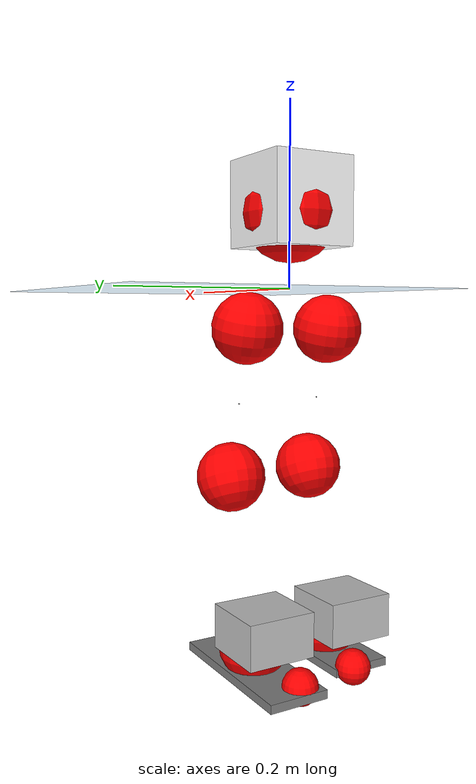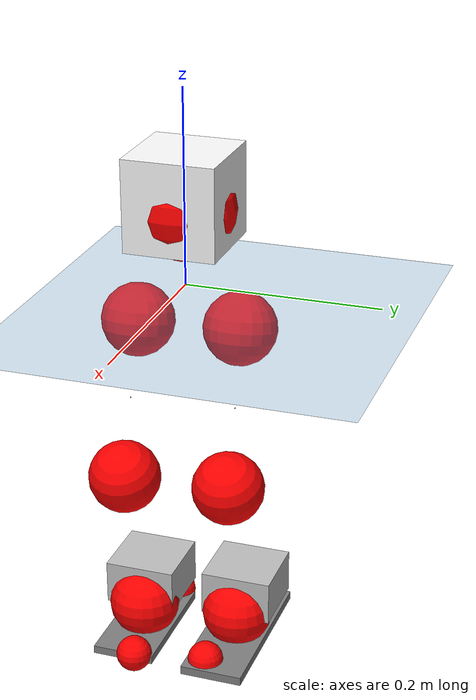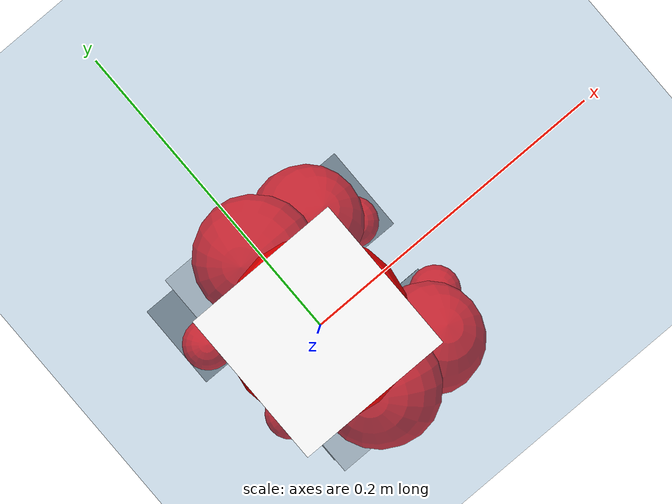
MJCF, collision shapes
<mujoco model="pi_12dof_release_v1">
  <compiler angle="radian" assetdir="assets" balanceinertia="true" inertiafromgeom="false"/>

  <option timestep="0.005" density="1.2" viscosity="2e-05"/>

  <size nkey="1"/>

  <visual>
    <quality shadowsize="8192"/>
    <map shadowclip="0.5"/>
  </visual>

  <default>
    <default class="/">
      <joint armature="0.01" damping="0.01" frictionloss="0.01"/>
      <geom contype="0" conaffinity="0" group="1" solref="-1000 -80"/>
      <site size="0.01 0.005 0.005" group="5"/>
      <general forcelimited="true" biastype="affine" gainprm="20" biasprm="0 -20 -0.5"/>
      <default class="foot">
        <geom size="0.0845 0.036 0.005" type="box" condim="6" group="4" priority="1" friction="0.9 0.2 0.2" solimp="0.015 1 0.005"/>
      </default>
      <default class="reward_collision_sphere">
        <geom group="5" rgba="1 0 0 1"/>
      </default>
    </default>
  </default>

  <asset>
    <texture type="skybox" colorspace="auto" name="//unnamed_texture_0" builtin="gradient" rgb1="0.95 0.95 0.95" rgb2="0.95 0.95 0.95" width="100" height="600"/>
    <texture type="2d" colorspace="auto" name="texplane" builtin="checker" rgb1="0.345 0.575 0.748" rgb2="0.345 0.575 0.748" markrgb="1 1 1" width="512" height="512"/>
    <material name="MatPlane" class="/" texture="texplane" texuniform="true" texrepeat="2 2" specular="0.9"/>
    <mesh name="baselink_1" class="/" file="baselink_1.STL"/>
    <mesh name="r_hip_pitch_link" class="/" file="r_hip_pitch_link.STL"/>
    <mesh name="r_hip_roll_link" class="/" file="r_hip_roll_link.STL"/>
    <mesh name="r_thigh_link" class="/" file="r_thigh_link.STL"/>
    <mesh name="r_calf_link" class="/" file="r_calf_link.STL"/>
    <mesh name="r_ankle_pitch_link" class="/" file="r_ankle_pitch_link.STL"/>
    <mesh name="r_ankle_roll_link" class="/" file="r_ankle_roll_link.STL"/>
    <mesh name="l_hip_pitch_link" class="/" file="l_hip_pitch_link.STL"/>
    <mesh name="l_hip_roll_link" class="/" file="l_hip_roll_link.STL"/>
    <mesh name="l_thigh_link" class="/" file="l_thigh_link.STL"/>
    <mesh name="l_calf_link" class="/" file="l_calf_link.STL"/>
    <mesh name="l_ankle_pitch_link" class="/" file="l_ankle_pitch_link.STL"/>
    <mesh name="l_ankle_roll_link" class="/" file="l_ankle_roll_link.STL"/>
  </asset>

  <worldbody>
    <geom name="floor" class="/" size="100 100 0.125" type="plane" group="0" material="MatPlane"/>
    <light name="toplight_shadow" class="/" pos="0 0 5" dir="0.0990148 0.0990148 -0.990148" type="directional" ambient="0.04 0.04 0.04" diffuse="0.55 0.55 0.55" specular="0.12 0.12 0.12"/>
    <light name="toplight_fill" class="/" pos="0 0 5" dir="0.0990148 0.0990148 -0.990148" type="directional" castshadow="false" ambient="0.04 0.04 0.04" diffuse="0.3 0.3 0.3" specular="0.08 0.08 0.08"/>
    <body name="trunk" pos="-0.000695528 -0.000434747 -0.00246914" quat="1 -1.07795e-05 0.000136698 -0.000145989">
      <inertial pos="0.000390864 -0.00152277 0.0500013" quat="0.696943 0.00297777 0.0185487 0.71688" mass="1.83681" diaginertia="0.0105059 0.00108256 0.00929524"/>
      <joint name="//unnamed_joint_0" type="free"/>
      <geom name="//unnamed_geom_1" class="/" type="mesh" density="0" rgba="1 1 1 1" mesh="baselink_1"/>
      <geom name="//unnamed_geom_2" class="/" size="0.0471121 0.0471121 0.0471121" pos="0 0 0.0935439" type="box" rgba="1 1 1 1"/>
      <geom name="//unnamed_geom_3" class="reward_collision_sphere" size="0.0518233" pos="0 0 0.0818509"/>
      <site name="imu" class="/" pos="0.000755016 -4.28664e-05 0.00626564" size="0.00942242"/>
      <camera name="track" class="/" pos="0 -1.30563 0" quat="0.707107 0.707107 0 0" mode="trackcom"/>
      <camera name="ego_camera" class="/" pos="0.0753459 0 0.210474" quat="-0.5 -0.5 0.5 0.5"/>
      <body name="r_hip_pitch_link" pos="0.00197347 -0.0162442 -0.0386746" quat="0.992239 -0.000835659 -0.12434 0.00104436">
        <inertial pos="0.00207362 -0.0397731 0.000831563" quat="-0.0069523 0.702208 -0.0323391 0.711203" mass="0.30973" diaginertia="0.0001115 1.18189e-05 0.000188824"/>
        <joint name="r_hip_pitch_joint" class="/" pos="0 0 0" axis="-0.000682199 -0.999999 -0.00127696" range="-1.75397 1.23654" armature="0.00813452" damping="0.0107246" frictionloss="0.00833109"/>
        <geom name="//unnamed_geom_4" class="/" type="mesh" density="0" rgba="0.75294 0.75294 0.75294 1" mesh="r_hip_pitch_link"/>
        <geom name="//unnamed_geom_5" class="/" size="0.000471121 0.000471121 0.000471121" type="box" rgba="0.75294 0.75294 0.75294 1"/>
        <body name="r_hip_roll_link" pos="0.000634329 -0.0344203 -0.00203943" quat="1 -1.71759e-05 -3.91076e-05 3.42592e-05">
          <inertial pos="0.0016914 1.04253e-05 -0.0703423" quat="0.704386 -0.0822594 -0.0746452 0.701072" mass="0.332141" diaginertia="0.000334127 3.2529e-05 0.000275513"/>
          <joint name="r_hip_roll_joint" class="/" pos="0 0 0" axis="-0.999999 -0.000350427 0.00102357" range="-0.141979 0.542443" armature="0.00802334" damping="0.00668323" frictionloss="0.0104986"/>
          <geom name="//unnamed_geom_6" class="/" type="mesh" density="0" rgba="0.75294 0.75294 0.75294 1" mesh="r_hip_roll_link"/>
          <geom name="//unnamed_geom_7" class="/" size="0.000471121 0.000471121 0.000471121" type="box" rgba="0.75294 0.75294 0.75294 1"/>
          <geom name="//unnamed_geom_8" class="reward_collision_sphere" size="0.0376897"/>
          <body name="r_thigh_link" pos="0.00221554 -0.00172502 -0.0809939" quat="1 0.000545682 -0.000130981 -0.000563633">
            <inertial pos="-0.000441583 -0.000486635 -0.0571846" quat="0.735767 0.677192 -0.00418786 -0.00635791" mass="0.0921103" diaginertia="0.000123377 1.12061e-05 0.000120449"/>
            <joint name="r_thigh_joint" class="/" pos="0 0 0" axis="-0.000199882 -0.0152069 -0.999884" stiffness="0.00955367" range="-0.255208 0.632486" armature="0.00977949" damping="0.00753313" frictionloss="0.00959326"/>
            <geom name="//unnamed_geom_9" class="/" type="mesh" density="0" rgba="0.75294 0.75294 0.75294 1" mesh="r_thigh_link"/>
            <geom name="//unnamed_geom_10" class="/" size="0.000471121 0.000471121 0.000471121" type="box" rgba="0.75294 0.75294 0.75294 1"/>
            <body name="r_calf_link" pos="-0.00205114 -0.00149653 -0.0839529" quat="0.94762 -5.56648e-05 0.3194 -0.000758677">
              <inertial pos="0.00094118 -8.78968e-05 -0.082408" quat="0.999979 -0.00289119 -0.00191872 0.00547089" mass="0.690519" diaginertia="0.00359837 0.000443901 0.000394296"/>
              <joint name="r_calf_joint" class="/" pos="0 0 0" axis="0.00801898 -0.999955 -0.00516294" range="-1.63197 0.704155" armature="0.00819256" damping="0.0205853" frictionloss="0.00810333"/>
              <geom name="//unnamed_geom_11" class="/" type="mesh" density="0" rgba="0.75294 0.75294 0.75294 1" mesh="r_calf_link"/>
              <geom name="//unnamed_geom_12" class="/" size="0.000471121 0.000471121 0.000471121" type="box" rgba="0.75294 0.75294 0.75294 1"/>
              <geom name="//unnamed_geom_13" class="reward_collision_sphere" size="0.0376897"/>
              <body name="r_ankle_pitch_link" pos="-0.00141497 7.92253e-05 -0.166338" quat="0.980076 2.29846e-05 -0.198622 -1.28354e-05">
                <inertial pos="0.00500531 0.00266391 0.000503086" quat="0.00369813 0.703166 -0.00656818 0.710985" mass="0.142208" diaginertia="0.000303968 2.6452e-05 0.000263737"/>
                <joint name="r_ankle_pitch_joint" class="/" pos="0 0 0" axis="-0.00166237 -0.999965 -0.00823088" range="-1.32939 0.518448" armature="0.00900197" damping="0.00123108" frictionloss="0.00931727"/>
                <geom name="//unnamed_geom_14" class="/" type="mesh" density="0" rgba="0.75294 0.75294 0.75294 1" mesh="r_ankle_pitch_link"/>
                <geom name="//unnamed_geom_15" class="/" size="0.0367474 0.0376897 0.023556" type="box" rgba="0.75294 0.75294 0.75294 1"/>
                <body name="r_ankle_roll_link" pos="0.0778842 0.00224477 0.00199624" quat="1 -0.000155343 -0.000270463 -5.98304e-05">
                  <inertial pos="-0.0241834 0.000651367 -0.0161556" quat="0.554759 0.422305 0.442768 0.563789" mass="0.431757" diaginertia="0.00115456 0.000119097 0.000610122"/>
                  <joint name="r_ankle_roll_joint" class="/" pos="0 0 0" axis="-0.999987 -0.00108726 -0.00506603" range="-0.203804 0.205208" armature="0.0105793" damping="9.22234e-05" frictionloss="0.010111"/>
                  <geom name="//unnamed_geom_16" class="/" type="mesh" density="0" rgba="0.75294 0.75294 0.75294 1" mesh="r_ankle_roll_link"/>
                  <geom name="//unnamed_geom_17" class="/" type="mesh" rgba="0.75294 0.75294 0.75294 1" mesh="r_ankle_roll_link"/>
                  <geom name="right_foot" class="foot" size="0.0672383 0.0329838 0.00430236" pos="-0.0512352 0 -0.0514492"/>
                  <geom name="//unnamed_geom_19" class="reward_collision_sphere" size="0.0376897" pos="-0.0502306 0 -0.023386"/>
                  <geom name="//unnamed_geom_20" class="reward_collision_sphere" size="0.0188448" pos="0.0150692 0.0130563 -0.046772"/>
                  <geom name="//unnamed_geom_21" class="reward_collision_sphere" size="0.0188448" pos="-0.120553 0.0130563 -0.046772"/>
                  <site name="right_foot" class="foot" pos="-0.0512352 0 -0.0514492" size="0.00942242"/>
                </body>
              </body>
            </body>
          </body>
        </body>
      </body>
      <body name="l_hip_pitch_link" pos="-0.00058698 0.0180295 -0.0378001" quat="0.992167 -0.000125055 -0.124918 0.000689639">
        <inertial pos="0.00386999 0.0361446 -0.00104811" quat="-0.0463186 0.707668 0.0401934 0.703879" mass="0.328537" diaginertia="0.000125073 1.22491e-05 0.000212513"/>
        <joint name="l_hip_pitch_joint" class="/" pos="0 0 0" axis="-0.00268398 0.999945 0.0101381" range="-1.26963 1.77062" armature="0.00965138" damping="0.0125077" frictionloss="0.0091225"/>
        <geom name="//unnamed_geom_22" class="/" type="mesh" density="0" rgba="0.75294 0.75294 0.75294 1" mesh="l_hip_pitch_link"/>
        <geom name="//unnamed_geom_23" class="/" size="0.000471121 0.000471121 0.000471121" type="box" rgba="0.75294 0.75294 0.75294 1"/>
        <body name="l_hip_roll_link" pos="-0.00320845 0.0375991 -0.000224799" quat="1 7.3447e-05 -3.02481e-05 6.51337e-06">
          <inertial pos="-0.000927739 0.00188319 -0.0722228" quat="0.697479 -0.0772368 -0.0807889 0.707836" mass="0.32605" diaginertia="0.000342051 3.18194e-05 0.000288216"/>
          <joint name="l_hip_roll_joint" class="/" pos="0 0 0" axis="-1 0.000562397 -0.00075016" stiffness="0.000560467" range="-0.500912 0.16836" armature="0.0095318" damping="0" frictionloss="0.00883301"/>
          <geom name="//unnamed_geom_24" class="/" type="mesh" density="0" rgba="0.75294 0.75294 0.75294 1" mesh="l_hip_roll_link"/>
          <geom name="//unnamed_geom_25" class="/" size="0.000471121 0.000471121 0.000471121" type="box" rgba="0.75294 0.75294 0.75294 1"/>
          <geom name="//unnamed_geom_26" class="reward_collision_sphere" size="0.0376897"/>
          <body name="l_thigh_link" pos="-0.00322257 -4.55103e-05 -0.0822527" quat="0.999999 -8.91322e-06 -0.000857552 -0.000844113">
            <inertial pos="0.000488058 -0.00115559 -0.0542463" quat="0.674533 0.738235 0.00326635 -0.00174434" mass="0.0944004" diaginertia="0.000126707 1.12175e-05 0.000127267"/>
            <joint name="l_thigh_joint" class="/" pos="0 0 0" axis="-0.00579568 -0.0111747 -0.999921" range="-0.65766 0.350829" armature="0.0107147" damping="0" frictionloss="0.0106858"/>
            <geom name="//unnamed_geom_27" class="/" type="mesh" density="0" rgba="0.75294 0.75294 0.75294 1" mesh="l_thigh_link"/>
            <geom name="//unnamed_geom_28" class="/" size="0.000471121 0.000471121 0.000471121" type="box" rgba="0.75294 0.75294 0.75294 1"/>
            <body name="l_calf_link" pos="-0.00171771 -0.000882954 -0.0839421" quat="0.947441 -0.000743604 0.319931 3.14217e-05">
              <inertial pos="-0.000454996 0.00229506 -0.0802303" quat="0.999947 0.00746562 0.00688287 0.00188347" mass="0.655058" diaginertia="0.00348331 0.000401641 0.00036706"/>
              <joint name="l_calf_joint" class="/" pos="0 0 0" axis="-0.0063108 0.999946 0.00831194" range="-0.602221 1.66832" armature="0.0088556" damping="0.00596124" frictionloss="0.00886917"/>
              <geom name="//unnamed_geom_29" class="/" type="mesh" density="0" rgba="0.75294 0.75294 0.75294 1" mesh="l_calf_link"/>
              <geom name="//unnamed_geom_30" class="/" size="0.000471121 0.000471121 0.000471121" type="box" rgba="0.75294 0.75294 0.75294 1"/>
              <geom name="//unnamed_geom_31" class="reward_collision_sphere" size="0.0376897"/>
              <body name="l_ankle_pitch_link" pos="-0.00090857 -0.00248128 -0.163314" quat="0.980029 -0.000340622 -0.198856 -0.000377954">
                <inertial pos="0.0072943 -0.00226459 0.000248754" quat="-0.00283097 0.707393 0.00169993 0.706812" mass="0.147879" diaginertia="0.000310964 2.61585e-05 0.000267395"/>
                <joint name="l_ankle_pitch_joint" class="/" pos="0 0 0" axis="-0.00442808 0.999939 0.010089" stiffness="0.000777776" range="-0.490989 1.3154" armature="0.00959712" damping="0" frictionloss="0.00900297"/>
                <geom name="//unnamed_geom_32" class="/" type="mesh" density="0" rgba="0.75294 0.75294 0.75294 1" mesh="l_ankle_pitch_link"/>
                <geom name="//unnamed_geom_33" class="/" size="0.0367474 0.0376897 0.023556" type="box" rgba="0.75294 0.75294 0.75294 1"/>
                <body name="l_ankle_roll_link" pos="0.0741686 -0.00175743 0.0010206" quat="0.999999 -0.000726591 -1.83318e-05 -0.0011099">
                  <inertial pos="-0.0273377 -0.000663668 -0.0177597" quat="0.55821 0.424918 0.439157 0.561237" mass="0.427756" diaginertia="0.00110593 0.000123648 0.000605184"/>
                  <joint name="l_ankle_roll_joint" class="/" pos="0 0 0" axis="-0.999991 -0.00386514 -0.00156479" range="-0.161749 0.148894" armature="0.00843376" damping="0.00731334" frictionloss="0.00929202"/>
                  <geom name="//unnamed_geom_34" class="/" type="mesh" density="0" rgba="0.75294 0.75294 0.75294 1" mesh="l_ankle_roll_link"/>
                  <geom name="//unnamed_geom_35" class="/" type="mesh" rgba="0.75294 0.75294 0.75294 1" mesh="l_ankle_roll_link"/>
                  <geom name="left_foot" class="foot" size="0.0879902 0.033064 0.00456716" pos="-0.0512352 0 -0.0514492"/>
                  <geom name="//unnamed_geom_37" class="reward_collision_sphere" size="0.0376897" pos="-0.0502306 0 -0.023386"/>
                  <geom name="//unnamed_geom_38" class="reward_collision_sphere" size="0.0188448" pos="0.0150692 -0.0130563 -0.046772"/>
                  <geom name="//unnamed_geom_39" class="reward_collision_sphere" size="0.0188448" pos="-0.120553 -0.0130563 -0.046772"/>
                  <site name="left_foot" class="foot" pos="-0.0512352 0 -0.0514492" size="0.00942242"/>
                </body>
              </body>
            </body>
          </body>
        </body>
      </body>
    </body>
  </worldbody>

  <contact>
    <pair class="/" geom1="floor" geom2="right_foot" name="//unnamed_contact_1"/>
    <pair class="/" geom1="floor" geom2="left_foot" name="//unnamed_contact_0"/>
  </contact>

  <actuator>
    <general name="r_hip_pitch_joint" class="/" joint="r_hip_pitch_joint" forcerange="-21.6085 21.6085" gainprm="18.8637" biasprm="0 -18.8637 -0.485386"/>
    <general name="r_hip_roll_joint" class="/" joint="r_hip_roll_joint" forcerange="-18.5669 18.5669" gainprm="18.8637" biasprm="0 -18.8637 -0.485386"/>
    <general name="r_thigh_joint" class="/" joint="r_thigh_joint" forcerange="-21.4569 21.4569" gainprm="18.8637" biasprm="0 -18.8637 -0.485386"/>
    <general name="r_calf_joint" class="/" joint="r_calf_joint" forcerange="-20.3706 20.3706" gainprm="18.8637" biasprm="0 -18.8637 -0.485386"/>
    <general name="r_ankle_pitch_joint" class="/" joint="r_ankle_pitch_joint" forcerange="-18.4563 18.4563" gainprm="18.8637" biasprm="0 -18.8637 -0.485386"/>
    <general name="r_ankle_roll_joint" class="/" joint="r_ankle_roll_joint" forcerange="-19.5003 19.5003" gainprm="18.8637" biasprm="0 -18.8637 -0.485386"/>
    <general name="l_hip_pitch_joint" class="/" joint="l_hip_pitch_joint" forcerange="-19.6523 19.6523" gainprm="18.8637" biasprm="0 -18.8637 -0.485386"/>
    <general name="l_hip_roll_joint" class="/" joint="l_hip_roll_joint" forcerange="-17.7478 17.7478" gainprm="18.8637" biasprm="0 -18.8637 -0.485386"/>
    <general name="l_thigh_joint" class="/" joint="l_thigh_joint" forcerange="-18.6837 18.6837" gainprm="18.8637" biasprm="0 -18.8637 -0.485386"/>
    <general name="l_calf_joint" class="/" joint="l_calf_joint" forcerange="-17.7757 17.7757" gainprm="18.8637" biasprm="0 -18.8637 -0.485386"/>
    <general name="l_ankle_pitch_joint" class="/" joint="l_ankle_pitch_joint" forcerange="-21.7901 21.7901" gainprm="18.8637" biasprm="0 -18.8637 -0.485386"/>
    <general name="l_ankle_roll_joint" class="/" joint="l_ankle_roll_joint" forcerange="-18.7759 18.7759" gainprm="18.8637" biasprm="0 -18.8637 -0.485386"/>
  </actuator>

  <sensor>
    <gyro site="imu" name="imu_angular_velocity"/>
    <velocimeter site="imu" name="imu_linear_velocity"/>
    <framelinvel objtype="site" objname="left_foot" name="left_foot_global_linear_velocity"/>
    <framelinvel objtype="site" objname="right_foot" name="right_foot_global_linear_velocity"/>
  </sensor>

  <keyframe>
    <key name="home" qpos="0 0 0.291 1 0 0 0 0.4 0 0 -0.8 0.4 0 -0.4 0 0 0.8 -0.4 0"/>
  </keyframe>
</mujoco>
